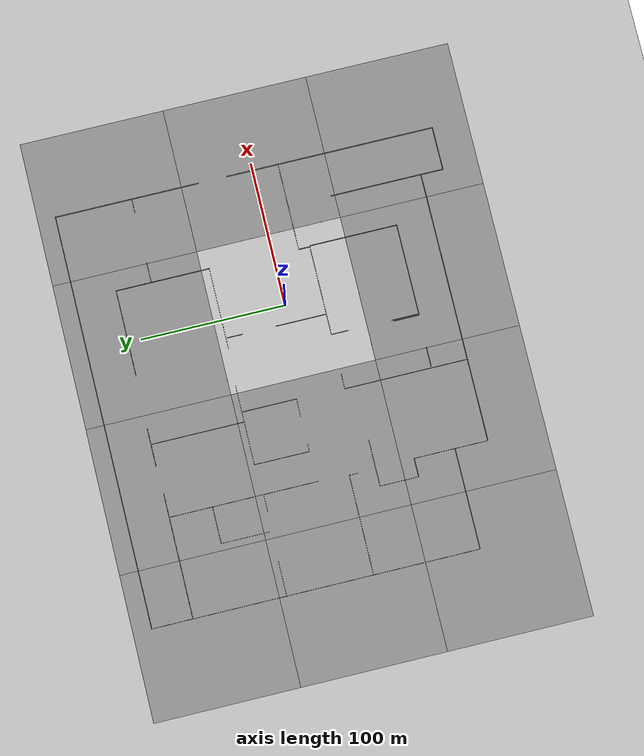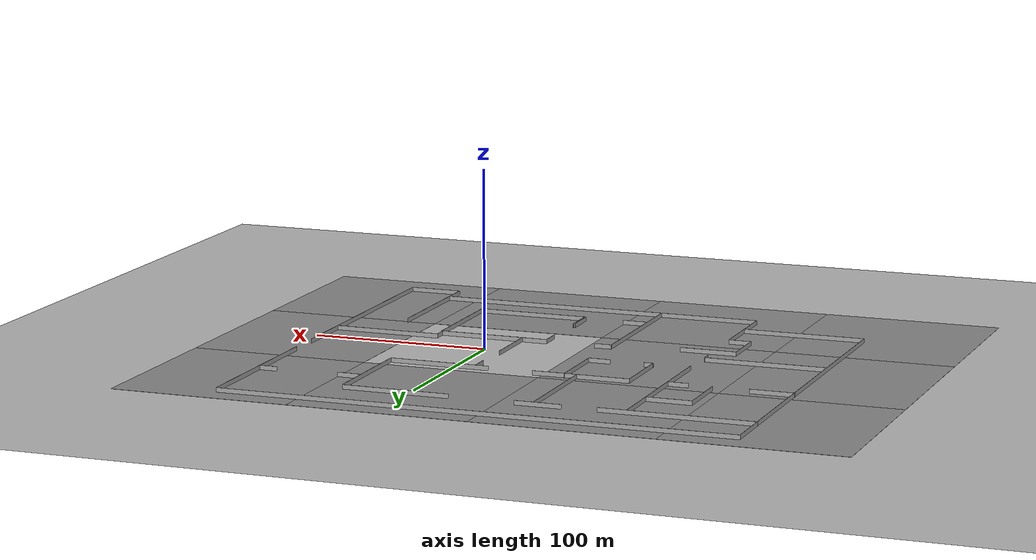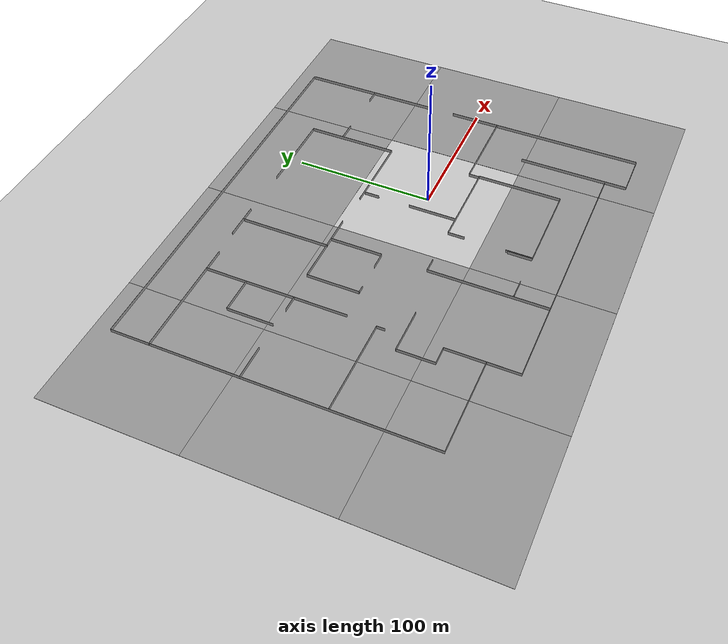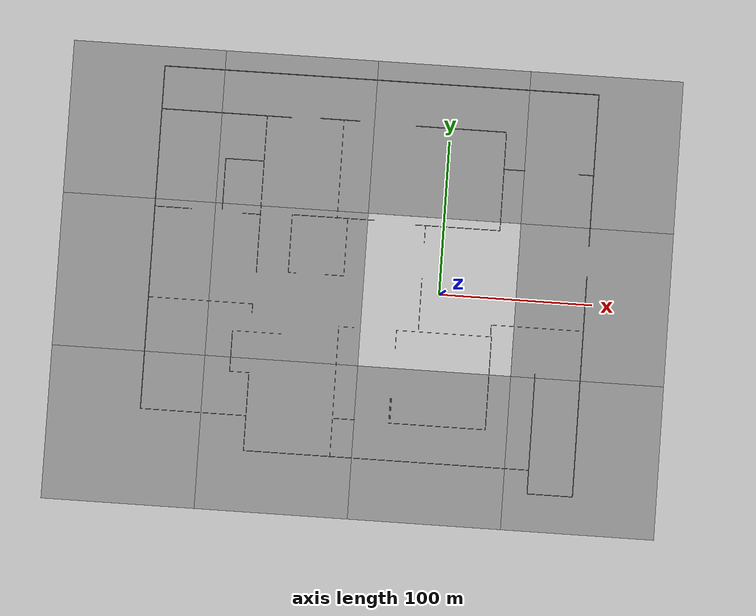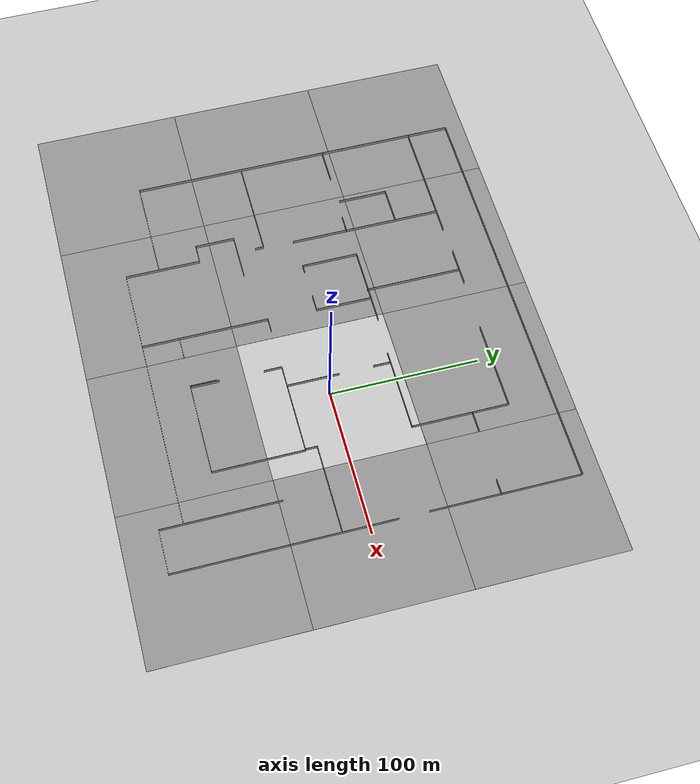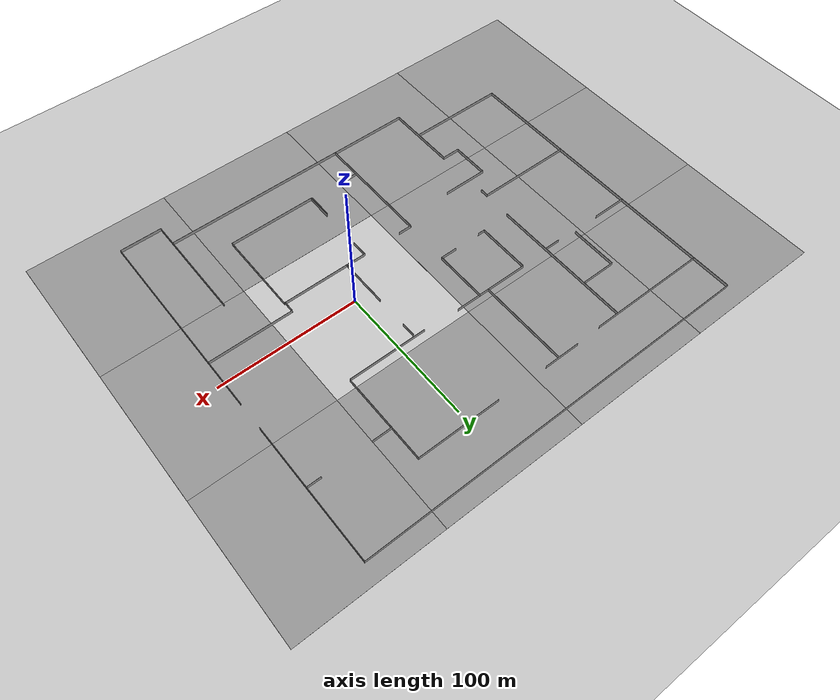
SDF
<sdf version="1.6">
 <world name="default">
  <light name="sun" type="directional">
   <pose>0 0 10 0 -0 0</pose>
   <diffuse>0.8 0.8 0.8 1</diffuse>
   <specular>0.2 0.2 0.2 1</specular>
   <attenuation>
    <range>1000</range>
    <constant>0.9</constant>
    <linear>0.01</linear>
    <quadratic>0.001</quadratic>
   </attenuation>
   <direction>-0.5 0.1 -0.9</direction>
  </light>
  <model name="ground_plane">
   <static>1</static>
   <link name="link">
    <collision name="collision">
     <geometry><plane><normal>0 0 1</normal><size>100 100</size></plane></geometry>
     <surface>
      <contact><collide_bitmask>65535</collide_bitmask></contact>
      <friction><ode><mu>100</mu><mu2>50</mu2></ode></friction>
     </surface>
    </collision>
    <visual name="visual">
     <cast_shadows>0</cast_shadows>
     <geometry><plane><normal>0 0 1</normal><size>100 100</size></plane></geometry>
     <material>
      <script><uri>file://media/materials/scripts/gazebo.material</uri><name>Gazebo/Grey</name></script>
     </material>
    </visual>
   </link>
  </model>
  <gravity>0 0 -9.8</gravity>
  <magnetic_field>6e-06 2.3e-05 -4.2e-05</magnetic_field>
  <atmosphere type="adiabatic"/>
  <physics name="default_physics" default="0" type="ode">
   <max_step_size>0.001</max_step_size>
   <real_time_factor>1</real_time_factor>
   <real_time_update_rate>1000</real_time_update_rate>
  </physics>
  <scene><ambient>0.4 0.4 0.4 1</ambient><background>0.7 0.7 0.7 1</background><shadows>1</shadows></scene>
  <audio><device>default</device></audio>
  <spherical_coordinates>
   <surface_model>EARTH_WGS84</surface_model>
   <latitude_deg>0</latitude_deg>
   <longitude_deg>0</longitude_deg>
   <elevation>0</elevation>
   <heading_deg>0</heading_deg>
  </spherical_coordinates>
  <model name="300x300">
   <pose>-47.1602 6.03765 0 0 -0 0</pose>
   <link name="Wall_0">
    <collision name="Wall_0_Collision">
     <geometry><box><size>85.25 0.15 2.5</size></box></geometry>
     <pose>0 0 1.25 0 -0 0</pose>
    </collision>
    <visual name="Wall_0_Visual">
     <pose>0 0 1.25 0 -0 0</pose>
     <geometry><box><size>85.25 0.15 2.5</size></box></geometry>
     <material>
      <script><uri>file://media/materials/scripts/gazebo.material</uri><name>Gazebo/Grey</name></script>
      <ambient>1 1 1 1</ambient>
     </material>
     <meta><layer>0</layer></meta>
    </visual>
    <pose>-99.6665 102.918 0 0 -0 3.14159</pose>
   </link>
   <link name="Wall_1">
    <collision name="Wall_1_Collision">
     <geometry><box><size>196.5 0.15 2.5</size></box></geometry>
     <pose>0 0 1.25 0 -0 0</pose>
    </collision>
    <visual name="Wall_1_Visual">
     <pose>0 0 1.25 0 -0 0</pose>
     <geometry><box><size>196.5 0.15 2.5</size></box></geometry>
     <material>
      <script><uri>file://media/materials/scripts/gazebo.material</uri><name>Gazebo/Grey</name></script>
      <ambient>1 1 1 1</ambient>
     </material>
     <meta><layer>0</layer></meta>
    </visual>
    <pose>-142.216 4.7426 0 0 -0 -1.5708</pose>
   </link>
   <link name="Wall_10">
    <collision name="Wall_10_Collision">
     <geometry><box><size>10 0.15 2.5</size></box></geometry>
     <pose>0 0 1.25 0 -0 0</pose>
    </collision>
    <visual name="Wall_10_Visual">
     <pose>0 0 1.25 0 -0 0</pose>
     <geometry><box><size>10 0.15 2.5</size></box></geometry>
     <material>
      <script><uri>file://media/materials/scripts/gazebo.material</uri><name>Gazebo/Grey</name></script>
      <ambient>1 1 1 1</ambient>
     </material>
     <meta><layer>0</layer></meta>
    </visual>
    <pose>-12.0457 -31.3094 0 0 -0 0</pose>
   </link>
   <link name="Wall_12">
    <collision name="Wall_12_Collision">
     <geometry><box><size>13.75 0.15 2.5</size></box></geometry>
     <pose>0 0 1.25 0 -0 0</pose>
    </collision>
    <visual name="Wall_12_Visual">
     <pose>0 0 1.25 0 -0 0</pose>
     <geometry><box><size>13.75 0.15 2.5</size></box></geometry>
     <material>
      <script><uri>file://media/materials/scripts/gazebo.material</uri><name>Gazebo/Grey</name></script>
      <ambient>1 1 1 1</ambient>
     </material>
     <meta><layer>0</layer></meta>
    </visual>
    <pose>-9.19897 -91.2484 0 0 -0 0</pose>
   </link>
   <link name="Wall_14">
    <collision name="Wall_14_Collision">
     <geometry><box><size>17.5 0.15 2.5</size></box></geometry>
     <pose>0 0 1.25 0 -0 0</pose>
    </collision>
    <visual name="Wall_14_Visual">
     <pose>0 0 1.25 0 -0 0</pose>
     <geometry><box><size>17.5 0.15 2.5</size></box></geometry>
     <material>
      <script><uri>file://media/materials/scripts/gazebo.material</uri><name>Gazebo/Grey</name></script>
      <ambient>1 1 1 1</ambient>
     </material>
     <meta><layer>0</layer></meta>
    </visual>
    <pose>19.7885 -83.1718 0 0 -0 -1.5708</pose>
   </link>
   <link name="Wall_15">
    <collision name="Wall_15_Collision">
     <geometry><box><size>63.25 0.15 2.5</size></box></geometry>
     <pose>0 0 1.25 0 -0 0</pose>
    </collision>
    <visual name="Wall_15_Visual">
     <pose>0 0 1.25 0 -0 0</pose>
     <geometry><box><size>63.25 0.15 2.5</size></box></geometry>
     <material>
      <script><uri>file://media/materials/scripts/gazebo.material</uri><name>Gazebo/Grey</name></script>
      <ambient>1 1 1 1</ambient>
     </material>
     <meta><layer>0</layer></meta>
    </visual>
    <pose>51.3385 -91.8468 0 0 -0 0</pose>
   </link>
   <link name="Wall_16">
    <collision name="Wall_16_Collision">
     <geometry><box><size>60.75 0.15 2.5</size></box></geometry>
     <pose>0 0 1.25 0 -0 0</pose>
    </collision>
    <visual name="Wall_16_Visual">
     <pose>0 0 1.25 0 -0 0</pose>
     <geometry><box><size>60.75 0.15 2.5</size></box></geometry>
     <material>
      <script><uri>file://media/materials/scripts/gazebo.material</uri><name>Gazebo/Grey</name></script>
      <ambient>1 1 1 1</ambient>
     </material>
     <meta><layer>0</layer></meta>
    </visual>
    <pose>82.8885 -61.5468 0 0 -0 1.5708</pose>
   </link>
   <link name="Wall_17">
    <collision name="Wall_17_Collision">
     <geometry><box><size>62.25 0.15 2.5</size></box></geometry>
     <pose>0 0 1.25 0 -0 0</pose>
    </collision>
    <visual name="Wall_17_Visual">
     <pose>0 0 1.25 0 -0 0</pose>
     <geometry><box><size>62.25 0.15 2.5</size></box></geometry>
     <material>
      <script><uri>file://media/materials/scripts/gazebo.material</uri><name>Gazebo/Grey</name></script>
      <ambient>1 1 1 1</ambient>
     </material>
     <meta><layer>0</layer></meta>
    </visual>
    <pose>51.8385 -31.2468 0 0 -0 3.14159</pose>
   </link>
   <link name="Wall_18">
    <collision name="Wall_18_Collision">
     <geometry><box><size>12 0.15 2.5</size></box></geometry>
     <pose>0 0 1.25 0 -0 0</pose>
    </collision>
    <visual name="Wall_18_Visual">
     <pose>0 0 1.25 0 -0 0</pose>
     <geometry><box><size>12 0.15 2.5</size></box></geometry>
     <material>
      <script><uri>file://media/materials/scripts/gazebo.material</uri><name>Gazebo/Grey</name></script>
      <ambient>1 1 1 1</ambient>
     </material>
     <meta><layer>0</layer></meta>
    </visual>
    <pose>20.7885 -37.1718 0 0 -0 -1.5708</pose>
   </link>
   <link name="Wall_2">
    <collision name="Wall_2_Collision">
     <geometry><box><size>69 0.15 2.5</size></box></geometry>
     <pose>0 0 1.25 0 -0 0</pose>
    </collision>
    <visual name="Wall_2_Visual">
     <pose>0 0 1.25 0 -0 0</pose>
     <geometry><box><size>69 0.15 2.5</size></box></geometry>
     <material>
      <script><uri>file://media/materials/scripts/gazebo.material</uri><name>Gazebo/Grey</name></script>
      <ambient>1 1 1 1</ambient>
     </material>
     <meta><layer>0</layer></meta>
    </visual>
    <pose>-107.791 -93.4324 0 0 -0 0</pose>
   </link>
   <link name="Wall_20">
    <collision name="Wall_20_Collision">
     <geometry><box><size>19 0.15 2.5</size></box></geometry>
     <pose>0 0 1.25 0 -0 0</pose>
    </collision>
    <visual name="Wall_20_Visual">
     <pose>0 0 1.25 0 -0 0</pose>
     <geometry><box><size>19 0.15 2.5</size></box></geometry>
     <material>
      <script><uri>file://media/materials/scripts/gazebo.material</uri><name>Gazebo/Grey</name></script>
      <ambient>1 1 1 1</ambient>
     </material>
     <meta><layer>0</layer></meta>
    </visual>
    <pose>20.5499 -82.399 0 0 -0 -1.5708</pose>
   </link>
   <link name="Wall_23">
    <collision name="Wall_23_Collision">
     <geometry><box><size>7.75 0.15 2.5</size></box></geometry>
     <pose>0 0 1.25 0 -0 0</pose>
    </collision>
    <visual name="Wall_23_Visual">
     <pose>0 0 1.25 0 -0 0</pose>
     <geometry><box><size>7.75 0.15 2.5</size></box></geometry>
     <material>
      <script><uri>file://media/materials/scripts/gazebo.material</uri><name>Gazebo/Grey</name></script>
      <ambient>1 1 1 1</ambient>
     </material>
     <meta><layer>0</layer></meta>
    </visual>
    <pose>82.2262 -27.295 0 0 -0 1.5708</pose>
   </link>
   <link name="Wall_24">
    <collision name="Wall_24_Collision">
     <geometry><box><size>60.25 0.15 2.5</size></box></geometry>
     <pose>0 0 1.25 0 -0 0</pose>
    </collision>
    <visual name="Wall_24_Visual">
     <pose>0 0 1.25 0 -0 0</pose>
     <geometry><box><size>60.25 0.15 2.5</size></box></geometry>
     <material>
      <script><uri>file://media/materials/scripts/gazebo.material</uri><name>Gazebo/Grey</name></script>
      <ambient>1 1 1 1</ambient>
     </material>
     <meta><layer>0</layer></meta>
    </visual>
    <pose>112.276 -23.495 0 0 -0 0</pose>
   </link>
   <link name="Wall_26">
    <collision name="Wall_26_Collision">
     <geometry><box><size>144 0.15 2.5</size></box></geometry>
     <pose>0 0 1.25 0 -0 0</pose>
    </collision>
    <visual name="Wall_26_Visual">
     <pose>0 0 1.25 0 -0 0</pose>
     <geometry><box><size>144 0.15 2.5</size></box></geometry>
     <material>
      <script><uri>file://media/materials/scripts/gazebo.material</uri><name>Gazebo/Grey</name></script>
      <ambient>1 1 1 1</ambient>
     </material>
     <meta><layer>0</layer></meta>
    </visual>
    <pose>142.38 -59.6182 0 0 -0 -1.5708</pose>
   </link>
   <link name="Wall_27">
    <collision name="Wall_27_Collision">
     <geometry><box><size>29.75 0.15 2.5</size></box></geometry>
     <pose>0 0 1.25 0 -0 0</pose>
    </collision>
    <visual name="Wall_27_Visual">
     <pose>0 0 1.25 0 -0 0</pose>
     <geometry><box><size>29.75 0.15 2.5</size></box></geometry>
     <material>
      <script><uri>file://media/materials/scripts/gazebo.material</uri><name>Gazebo/Grey</name></script>
      <ambient>1 1 1 1</ambient>
     </material>
     <meta><layer>0</layer></meta>
    </visual>
    <pose>127.58 -131.543 0 0 -0 3.14159</pose>
   </link>
   <link name="Wall_28">
    <collision name="Wall_28_Collision">
     <geometry><box><size>78.25 0.15 2.5</size></box></geometry>
     <pose>0 0 1.25 0 -0 0</pose>
    </collision>
    <visual name="Wall_28_Visual">
     <pose>0 0 1.25 0 -0 0</pose>
     <geometry><box><size>78.25 0.15 2.5</size></box></geometry>
     <material>
      <script><uri>file://media/materials/scripts/gazebo.material</uri><name>Gazebo/Grey</name></script>
      <ambient>1 1 1 1</ambient>
     </material>
     <meta><layer>0</layer></meta>
    </visual>
    <pose>112.78 -92.4932 0 0 -0 1.5708</pose>
   </link>
   <link name="Wall_30">
    <collision name="Wall_30_Collision">
     <geometry><box><size>46.5 0.15 2.5</size></box></geometry>
     <pose>0 0 1.25 0 -0 0</pose>
    </collision>
    <visual name="Wall_30_Visual">
     <pose>0 0 1.25 0 -0 0</pose>
     <geometry><box><size>46.5 0.15 2.5</size></box></geometry>
     <material>
      <script><uri>file://media/materials/scripts/gazebo.material</uri><name>Gazebo/Grey</name></script>
      <ambient>1 1 1 1</ambient>
     </material>
     <meta><layer>0</layer></meta>
    </visual>
    <pose>142.38 55.2791 0 0 -0 1.5708</pose>
   </link>
   <link name="Wall_31">
    <collision name="Wall_31_Collision">
     <geometry><box><size>10 0.15 2.5</size></box></geometry>
     <pose>0 0 1.25 0 -0 0</pose>
    </collision>
    <visual name="Wall_31_Visual">
     <pose>0 0 1.25 0 -0 0</pose>
     <geometry><box><size>10 0.15 2.5</size></box></geometry>
     <material>
      <script><uri>file://media/materials/scripts/gazebo.material</uri><name>Gazebo/Grey</name></script>
      <ambient>1 1 1 1</ambient>
     </material>
     <meta><layer>0</layer></meta>
    </visual>
    <pose>137.455 78.4541 0 0 -0 3.14159</pose>
   </link>
   <link name="Wall_33">
    <collision name="Wall_33_Collision">
     <geometry><box><size>13.75 0.15 2.5</size></box></geometry>
     <pose>0 0 1.25 0 -0 0</pose>
    </collision>
    <visual name="Wall_33_Visual">
     <pose>0 0 1.25 0 -0 0</pose>
     <geometry><box><size>13.75 0.15 2.5</size></box></geometry>
     <material>
      <script><uri>file://media/materials/scripts/gazebo.material</uri><name>Gazebo/Grey</name></script>
      <ambient>1 1 1 1</ambient>
     </material>
     <meta><layer>0</layer></meta>
    </visual>
    <pose>90.6549 78.5517 0 0 -0 3.14159</pose>
   </link>
   <link name="Wall_35">
    <collision name="Wall_35_Collision">
     <geometry><box><size>59.5 0.15 2.5</size></box></geometry>
     <pose>0 0 1.25 0 -0 0</pose>
    </collision>
    <visual name="Wall_35_Visual">
     <pose>0 0 1.25 0 -0 0</pose>
     <geometry><box><size>59.5 0.15 2.5</size></box></geometry>
     <material>
      <script><uri>file://media/materials/scripts/gazebo.material</uri><name>Gazebo/Grey</name></script>
      <ambient>1 1 1 1</ambient>
     </material>
     <meta><layer>0</layer></meta>
    </visual>
    <pose>54.0321 102.918 0 0 -0 0</pose>
   </link>
   <link name="Wall_36">
    <collision name="Wall_36_Collision">
     <geometry><box><size>64.75 0.15 2.5</size></box></geometry>
     <pose>0 0 1.25 0 -0 0</pose>
    </collision>
    <visual name="Wall_36_Visual">
     <pose>0 0 1.25 0 -0 0</pose>
     <geometry><box><size>64.75 0.15 2.5</size></box></geometry>
     <material>
      <script><uri>file://media/materials/scripts/gazebo.material</uri><name>Gazebo/Grey</name></script>
      <ambient>1 1 1 1</ambient>
     </material>
     <meta><layer>0</layer></meta>
    </visual>
    <pose>83.7071 70.6176 0 0 -0 -1.5708</pose>
   </link>
   <link name="Wall_37">
    <collision name="Wall_37_Collision">
     <geometry><box><size>56.25 0.15 2.5</size></box></geometry>
     <pose>0 0 1.25 0 -0 0</pose>
    </collision>
    <visual name="Wall_37_Visual">
     <pose>0 0 1.25 0 -0 0</pose>
     <geometry><box><size>56.25 0.15 2.5</size></box></geometry>
     <material>
      <script><uri>file://media/materials/scripts/gazebo.material</uri><name>Gazebo/Grey</name></script>
      <ambient>1 1 1 1</ambient>
     </material>
     <meta><layer>0</layer></meta>
    </visual>
    <pose>55.6571 38.3176 0 0 -0 3.14159</pose>
   </link>
   <link name="Wall_39">
    <collision name="Wall_39_Collision">
     <geometry><box><size>35 0.15 2.5</size></box></geometry>
     <pose>0 0 1.25 0 -0 0</pose>
    </collision>
    <visual name="Wall_39_Visual">
     <pose>0 0 1.25 0 -0 0</pose>
     <geometry><box><size>35 0.15 2.5</size></box></geometry>
     <material>
      <script><uri>file://media/materials/scripts/gazebo.material</uri><name>Gazebo/Grey</name></script>
      <ambient>1 1 1 1</ambient>
     </material>
     <meta><layer>0</layer></meta>
    </visual>
    <pose>35.0172 -13.67 0 0 -0 1.5708</pose>
   </link>
   <link name="Wall_4">
    <collision name="Wall_4_Collision">
     <geometry><box><size>32 0.15 2.5</size></box></geometry>
     <pose>0 0 1.25 0 -0 0</pose>
    </collision>
    <visual name="Wall_4_Visual">
     <pose>0 0 1.25 0 -0 0</pose>
     <geometry><box><size>32 0.15 2.5</size></box></geometry>
     <material>
      <script><uri>file://media/materials/scripts/gazebo.material</uri><name>Gazebo/Grey</name></script>
      <ambient>1 1 1 1</ambient>
     </material>
     <meta><layer>0</layer></meta>
    </visual>
    <pose>-69.9957 -38.7094 0 0 -0 3.14159</pose>
   </link>
   <link name="Wall_44">
    <collision name="Wall_44_Collision">
     <geometry><box><size>10.75 0.15 2.5</size></box></geometry>
     <pose>0 0 1.25 0 -0 0</pose>
    </collision>
    <visual name="Wall_44_Visual">
     <pose>0 0 1.25 0 -0 0</pose>
     <geometry><box><size>10.75 0.15 2.5</size></box></geometry>
     <material>
      <script><uri>file://media/materials/scripts/gazebo.material</uri><name>Gazebo/Grey</name></script>
      <ambient>1 1 1 1</ambient>
     </material>
     <meta><layer>0</layer></meta>
    </visual>
    <pose>35.0172 32.1342 0 0 -0 -1.5708</pose>
   </link>
   <link name="Wall_46">
    <collision name="Wall_46_Collision">
     <geometry><box><size>26 0.15 2.5</size></box></geometry>
     <pose>0 0 1.25 0 -0 0</pose>
    </collision>
    <visual name="Wall_46_Visual">
     <pose>0 0 1.25 0 -0 0</pose>
     <geometry><box><size>26 0.15 2.5</size></box></geometry>
     <material>
      <script><uri>file://media/materials/scripts/gazebo.material</uri><name>Gazebo/Grey</name></script>
      <ambient>1 1 1 1</ambient>
     </material>
     <meta><layer>0</layer></meta>
    </visual>
    <pose>-25.1556 103.679 0 0 -0 0</pose>
   </link>
   <link name="Wall_48">
    <collision name="Wall_48_Collision">
     <geometry><box><size>64 0.15 2.5</size></box></geometry>
     <pose>0 0 1.25 0 -0 0</pose>
    </collision>
    <visual name="Wall_48_Visual">
     <pose>0 0 1.25 0 -0 0</pose>
     <geometry><box><size>64 0.15 2.5</size></box></geometry>
     <material>
      <script><uri>file://media/materials/scripts/gazebo.material</uri><name>Gazebo/Grey</name></script>
      <ambient>1 1 1 1</ambient>
     </material>
     <meta><layer>0</layer></meta>
    </visual>
    <pose>-22.8519 70.9926 0 0 -0 -1.5708</pose>
   </link>
   <link name="Wall_5">
    <collision name="Wall_5_Collision">
     <geometry><box><size>26.75 0.15 2.5</size></box></geometry>
     <pose>0 0 1.25 0 -0 0</pose>
    </collision>
    <visual name="Wall_5_Visual">
     <pose>0 0 1.25 0 -0 0</pose>
     <geometry><box><size>26.75 0.15 2.5</size></box></geometry>
     <material>
      <script><uri>file://media/materials/scripts/gazebo.material</uri><name>Gazebo/Grey</name></script>
      <ambient>1 1 1 1</ambient>
     </material>
     <meta><layer>0</layer></meta>
    </visual>
    <pose>-85.9207 -52.0094 0 0 -0 -1.5708</pose>
   </link>
   <link name="Wall_50">
    <collision name="Wall_50_Collision">
     <geometry><box><size>5.25 0.15 2.5</size></box></geometry>
     <pose>0 0 1.25 0 -0 0</pose>
    </collision>
    <visual name="Wall_50_Visual">
     <pose>0 0 1.25 0 -0 0</pose>
     <geometry><box><size>5.25 0.15 2.5</size></box></geometry>
     <material>
      <script><uri>file://media/materials/scripts/gazebo.material</uri><name>Gazebo/Grey</name></script>
      <ambient>1 1 1 1</ambient>
     </material>
     <meta><layer>0</layer></meta>
    </visual>
    <pose>-49.7678 1.6467 0 0 -0 3.14159</pose>
   </link>
   <link name="Wall_51">
    <collision name="Wall_51_Collision">
     <geometry><box><size>38 0.15 2.5</size></box></geometry>
     <pose>0 0 1.25 0 -0 0</pose>
    </collision>
    <visual name="Wall_51_Visual">
     <pose>0 0 1.25 0 -0 0</pose>
     <geometry><box><size>38 0.15 2.5</size></box></geometry>
     <material>
      <script><uri>file://media/materials/scripts/gazebo.material</uri><name>Gazebo/Grey</name></script>
      <ambient>1 1 1 1</ambient>
     </material>
     <meta><layer>0</layer></meta>
    </visual>
    <pose>-52.3178 20.5717 0 0 -0 1.5708</pose>
   </link>
   <link name="Wall_52">
    <collision name="Wall_52_Collision">
     <geometry><box><size>54.5 0.15 2.5</size></box></geometry>
     <pose>0 0 1.25 0 -0 0</pose>
    </collision>
    <visual name="Wall_52_Visual">
     <pose>0 0 1.25 0 -0 0</pose>
     <geometry><box><size>54.5 0.15 2.5</size></box></geometry>
     <material>
      <script><uri>file://media/materials/scripts/gazebo.material</uri><name>Gazebo/Grey</name></script>
      <ambient>1 1 1 1</ambient>
     </material>
     <meta><layer>0</layer></meta>
    </visual>
    <pose>-25.1428 39.4967 0 0 -0 0</pose>
   </link>
   <link name="Wall_54">
    <collision name="Wall_54_Collision">
     <geometry><box><size>38 0.15 2.5</size></box></geometry>
     <pose>0 0 1.25 0 -0 0</pose>
    </collision>
    <visual name="Wall_54_Visual">
     <pose>0 0 1.25 0 -0 0</pose>
     <geometry><box><size>38 0.15 2.5</size></box></geometry>
     <material>
      <script><uri>file://media/materials/scripts/gazebo.material</uri><name>Gazebo/Grey</name></script>
      <ambient>1 1 1 1</ambient>
     </material>
     <meta><layer>0</layer></meta>
    </visual>
    <pose>-15.999 20.7935 0 0 -0 -1.5708</pose>
   </link>
   <link name="Wall_55">
    <collision name="Wall_55_Collision">
     <geometry><box><size>12.25 0.15 2.5</size></box></geometry>
     <pose>0 0 1.25 0 -0 0</pose>
    </collision>
    <visual name="Wall_55_Visual">
     <pose>0 0 1.25 0 -0 0</pose>
     <geometry><box><size>12.25 0.15 2.5</size></box></geometry>
     <material>
      <script><uri>file://media/materials/scripts/gazebo.material</uri><name>Gazebo/Grey</name></script>
      <ambient>1 1 1 1</ambient>
     </material>
     <meta><layer>0</layer></meta>
    </visual>
    <pose>-22.049 1.86847 0 0 -0 3.14159</pose>
   </link>
   <link name="Wall_58">
    <collision name="Wall_58_Collision">
     <geometry><box><size>102.75 0.15 2.5</size></box></geometry>
     <pose>0 0 1.25 0 -0 0</pose>
    </collision>
    <visual name="Wall_58_Visual">
     <pose>0 0 1.25 0 -0 0</pose>
     <geometry><box><size>102.75 0.15 2.5</size></box></geometry>
     <material>
      <script><uri>file://media/materials/scripts/gazebo.material</uri><name>Gazebo/Grey</name></script>
      <ambient>1 1 1 1</ambient>
     </material>
     <meta><layer>0</layer></meta>
    </visual>
    <pose>-73.1066 51.6176 0 0 -0 -1.5708</pose>
   </link>
   <link name="Wall_6">
    <collision name="Wall_6_Collision">
     <geometry><box><size>12.75 0.15 2.5</size></box></geometry>
     <pose>0 0 1.25 0 -0 0</pose>
    </collision>
    <visual name="Wall_6_Visual">
     <pose>0 0 1.25 0 -0 0</pose>
     <geometry><box><size>12.75 0.15 2.5</size></box></geometry>
     <material>
      <script><uri>file://media/materials/scripts/gazebo.material</uri><name>Gazebo/Grey</name></script>
      <ambient>1 1 1 1</ambient>
     </material>
     <meta><layer>0</layer></meta>
    </visual>
    <pose>-79.6207 -65.3094 0 0 -0 0</pose>
   </link>
   <link name="Wall_61">
    <collision name="Wall_61_Collision">
     <geometry><box><size>25.25 0.15 2.5</size></box></geometry>
     <pose>0 0 1.25 0 -0 0</pose>
    </collision>
    <visual name="Wall_61_Visual">
     <pose>0 0 1.25 0 -0 0</pose>
     <geometry><box><size>25.25 0.15 2.5</size></box></geometry>
     <material>
      <script><uri>file://media/materials/scripts/gazebo.material</uri><name>Gazebo/Grey</name></script>
      <ambient>1 1 1 1</ambient>
     </material>
     <meta><layer>0</layer></meta>
    </visual>
    <pose>-85.6566 73.2216 0 0 -0 3.14159</pose>
   </link>
   <link name="Wall_62">
    <collision name="Wall_62_Collision">
     <geometry><box><size>33.5 0.15 2.5</size></box></geometry>
     <pose>0 0 1.25 0 -0 0</pose>
    </collision>
    <visual name="Wall_62_Visual">
     <pose>0 0 1.25 0 -0 0</pose>
     <geometry><box><size>33.5 0.15 2.5</size></box></geometry>
     <material>
      <script><uri>file://media/materials/scripts/gazebo.material</uri><name>Gazebo/Grey</name></script>
      <ambient>1 1 1 1</ambient>
     </material>
     <meta><layer>0</layer></meta>
    </visual>
    <pose>-98.2066 56.5466 0 0 -0 -1.5708</pose>
   </link>
   <link name="Wall_64">
    <collision name="Wall_64_Collision">
     <geometry><box><size>24.5 0.15 2.5</size></box></geometry>
     <pose>0 0 1.25 0 -0 0</pose>
    </collision>
    <visual name="Wall_64_Visual">
     <pose>0 0 1.25 0 -0 0</pose>
     <geometry><box><size>24.5 0.15 2.5</size></box></geometry>
     <material>
      <script><uri>file://media/materials/scripts/gazebo.material</uri><name>Gazebo/Grey</name></script>
      <ambient>1 1 1 1</ambient>
     </material>
     <meta><layer>0</layer></meta>
    </visual>
    <pose>-130.222 38.957 0 0 -0 0</pose>
   </link>
   <link name="Wall_66">
    <collision name="Wall_66_Collision">
     <geometry><box><size>11.5 0.15 2.5</size></box></geometry>
     <pose>0 0 1.25 0 -0 0</pose>
    </collision>
    <visual name="Wall_66_Visual">
     <pose>0 0 1.25 0 -0 0</pose>
     <geometry><box><size>11.5 0.15 2.5</size></box></geometry>
     <material>
      <script><uri>file://media/materials/scripts/gazebo.material</uri><name>Gazebo/Grey</name></script>
      <ambient>1 1 1 1</ambient>
     </material>
     <meta><layer>0</layer></meta>
    </visual>
    <pose>-78.7816 38.1956 0 0 -0 3.14159</pose>
   </link>
   <link name="Wall_68">
    <collision name="Wall_68_Collision">
     <geometry><box><size>67.75 0.15 2.5</size></box></geometry>
     <pose>0 0 1.25 0 -0 0</pose>
    </collision>
    <visual name="Wall_68_Visual">
     <pose>0 0 1.25 0 -0 0</pose>
     <geometry><box><size>67.75 0.15 2.5</size></box></geometry>
     <material>
      <script><uri>file://media/materials/scripts/gazebo.material</uri><name>Gazebo/Grey</name></script>
      <ambient>1 1 1 1</ambient>
     </material>
     <meta><layer>0</layer></meta>
    </visual>
    <pose>-107.836 -20.4349 0 0 -0 0</pose>
   </link>
   <link name="Wall_69">
    <collision name="Wall_69_Collision">
     <geometry><box><size>6 0.15 2.5</size></box></geometry>
     <pose>0 0 1.25 0 -0 0</pose>
    </collision>
    <visual name="Wall_69_Visual">
     <pose>0 0 1.25 0 -0 0</pose>
     <geometry><box><size>6 0.15 2.5</size></box></geometry>
     <material>
      <script><uri>file://media/materials/scripts/gazebo.material</uri><name>Gazebo/Grey</name></script>
      <ambient>1 1 1 1</ambient>
     </material>
     <meta><layer>0</layer></meta>
    </visual>
    <pose>-74.0358 -23.3599 0 0 -0 -1.5708</pose>
   </link>
   <link name="Wall_7">
    <collision name="Wall_7_Collision">
     <geometry><box><size>51 0.15 2.5</size></box></geometry>
     <pose>0 0 1.25 0 -0 0</pose>
    </collision>
    <visual name="Wall_7_Visual">
     <pose>0 0 1.25 0 -0 0</pose>
     <geometry><box><size>51 0.15 2.5</size></box></geometry>
     <material>
      <script><uri>file://media/materials/scripts/gazebo.material</uri><name>Gazebo/Grey</name></script>
      <ambient>1 1 1 1</ambient>
     </material>
     <meta><layer>0</layer></meta>
    </visual>
    <pose>-73.3207 -90.7344 0 0 -0 -1.5708</pose>
   </link>
   <link name="Wall_73">
    <collision name="Wall_73_Collision">
     <geometry><box><size>129.75 0.15 2.5</size></box></geometry>
     <pose>0 0 1.25 0 -0 0</pose>
    </collision>
    <visual name="Wall_73_Visual">
     <pose>0 0 1.25 0 -0 0</pose>
     <geometry><box><size>129.75 0.15 2.5</size></box></geometry>
     <material>
      <script><uri>file://media/materials/scripts/gazebo.material</uri><name>Gazebo/Grey</name></script>
      <ambient>1 1 1 1</ambient>
     </material>
     <meta><layer>0</layer></meta>
    </visual>
    <pose>47.8293 -116.159 0 0 -0 0</pose>
   </link>
   <link name="Wall_77">
    <collision name="Wall_77_Collision">
     <geometry><box><size>28.25 0.15 2.5</size></box></geometry>
     <pose>0 0 1.25 0 -0 0</pose>
    </collision>
    <visual name="Wall_77_Visual">
     <pose>0 0 1.25 0 -0 0</pose>
     <geometry><box><size>28.25 0.15 2.5</size></box></geometry>
     <material>
      <script><uri>file://media/materials/scripts/gazebo.material</uri><name>Gazebo/Grey</name></script>
      <ambient>1 1 1 1</ambient>
     </material>
     <meta><layer>0</layer></meta>
    </visual>
    <pose>-142.212 116.978 0 0 -0 1.5708</pose>
   </link>
   <link name="Wall_78">
    <collision name="Wall_78_Collision">
     <geometry><box><size>284.727 0.15 2.5</size></box></geometry>
     <pose>0 0 1.25 0 -0 0</pose>
    </collision>
    <visual name="Wall_78_Visual">
     <pose>0 0 1.25 0 -0 0</pose>
     <geometry><box><size>284.727 0.15 2.5</size></box></geometry>
     <material>
      <script><uri>file://media/materials/scripts/gazebo.material</uri><name>Gazebo/Grey</name></script>
      <ambient>1 1 1 1</ambient>
     </material>
     <meta><layer>0</layer></meta>
    </visual>
    <pose>0.093822 131.286 0 0 -0 0.001809</pose>
   </link>
   <link name="Wall_79">
    <collision name="Wall_79_Collision">
     <geometry><box><size>53.25 0.15 2.5</size></box></geometry>
     <pose>0 0 1.25 0 -0 0</pose>
    </collision>
    <visual name="Wall_79_Visual">
     <pose>0 0 1.25 0 -0 0</pose>
     <geometry><box><size>53.25 0.15 2.5</size></box></geometry>
     <material>
      <script><uri>file://media/materials/scripts/gazebo.material</uri><name>Gazebo/Grey</name></script>
      <ambient>1 1 1 1</ambient>
     </material>
     <meta><layer>0</layer></meta>
    </visual>
    <pose>142.397 104.993 0 0 -0 -1.5708</pose>
   </link>
   <link name="Wall_8">
    <collision name="Wall_8_Collision">
     <geometry><box><size>56.5 0.15 2.5</size></box></geometry>
     <pose>0 0 1.25 0 -0 0</pose>
    </collision>
    <visual name="Wall_8_Visual">
     <pose>0 0 1.25 0 -0 0</pose>
     <geometry><box><size>56.5 0.15 2.5</size></box></geometry>
     <material>
      <script><uri>file://media/materials/scripts/gazebo.material</uri><name>Gazebo/Grey</name></script>
      <ambient>1 1 1 1</ambient>
     </material>
     <meta><layer>0</layer></meta>
    </visual>
    <pose>-45.1457 -116.159 0 0 -0 0</pose>
   </link>
   <link name="Wall_9">
    <collision name="Wall_9_Collision">
     <geometry><box><size>85 0.15 2.5</size></box></geometry>
     <pose>0 0 1.25 0 -0 0</pose>
    </collision>
    <visual name="Wall_9_Visual">
     <pose>0 0 1.25 0 -0 0</pose>
     <geometry><box><size>85 0.15 2.5</size></box></geometry>
     <material>
      <script><uri>file://media/materials/scripts/gazebo.material</uri><name>Gazebo/Grey</name></script>
      <ambient>1 1 1 1</ambient>
     </material>
     <meta><layer>0</layer></meta>
    </visual>
    <pose>-16.9707 -73.7344 0 0 -0 1.5708</pose>
   </link>
   <static>1</static>
  </model>
  <model name="ground_plane_0">
   <static>1</static>
   <link name="link">
    <collision name="collision">
     <geometry><plane><normal>0 0 1</normal><size>100 100</size></plane></geometry>
     <surface>
      <contact><collide_bitmask>65535</collide_bitmask></contact>
      <friction><ode><mu>100</mu><mu2>50</mu2></ode></friction>
     </surface>
    </collision>
    <visual name="visual">
     <cast_shadows>0</cast_shadows>
     <geometry><plane><normal>0 0 1</normal><size>100 100</size></plane></geometry>
     <material>
      <script><uri>file://media/materials/scripts/gazebo.material</uri><name>Gazebo/Grey</name></script>
     </material>
    </visual>
   </link>
   <pose>-100 0 0 0 -0 0</pose>
  </model>
  <model name="ground_plane_1">
   <static>1</static>
   <link name="link">
    <collision name="collision">
     <geometry><plane><normal>0 0 1</normal><size>100 100</size></plane></geometry>
     <surface>
      <contact><collide_bitmask>65535</collide_bitmask></contact>
      <friction><ode><mu>100</mu><mu2>50</mu2></ode></friction>
     </surface>
    </collision>
    <visual name="visual">
     <cast_shadows>0</cast_shadows>
     <geometry><plane><normal>0 0 1</normal><size>100 100</size></plane></geometry>
     <material>
      <script><uri>file://media/materials/scripts/gazebo.material</uri><name>Gazebo/Grey</name></script>
     </material>
    </visual>
   </link>
   <pose>-200 0 0 0 -0 0</pose>
  </model>
  <model name="ground_plane_2">
   <static>1</static>
   <link name="link">
    <collision name="collision">
     <geometry><plane><normal>0 0 1</normal><size>100 100</size></plane></geometry>
     <surface>
      <contact><collide_bitmask>65535</collide_bitmask></contact>
      <friction><ode><mu>100</mu><mu2>50</mu2></ode></friction>
     </surface>
    </collision>
    <visual name="visual">
     <cast_shadows>0</cast_shadows>
     <geometry><plane><normal>0 0 1</normal><size>100 100</size></plane></geometry>
     <material>
      <script><uri>file://media/materials/scripts/gazebo.material</uri><name>Gazebo/Grey</name></script>
     </material>
    </visual>
   </link>
   <pose>0 -100 0 0 -0 0</pose>
  </model>
  <model name="ground_plane_3">
   <static>1</static>
   <link name="link">
    <collision name="collision">
     <geometry><plane><normal>0 0 1</normal><size>100 100</size></plane></geometry>
     <surface>
      <contact><collide_bitmask>65535</collide_bitmask></contact>
      <friction><ode><mu>100</mu><mu2>50</mu2></ode></friction>
     </surface>
    </collision>
    <visual name="visual">
     <cast_shadows>0</cast_shadows>
     <geometry><plane><normal>0 0 1</normal><size>100 100</size></plane></geometry>
     <material>
      <script><uri>file://media/materials/scripts/gazebo.material</uri><name>Gazebo/Grey</name></script>
     </material>
    </visual>
   </link>
   <pose>-100 -100 0 0 -0 0</pose>
  </model>
  <model name="ground_plane_4">
   <static>1</static>
   <link name="link">
    <collision name="collision">
     <geometry><plane><normal>0 0 1</normal><size>100 100</size></plane></geometry>
     <surface>
      <contact><collide_bitmask>65535</collide_bitmask></contact>
      <friction><ode><mu>100</mu><mu2>50</mu2></ode></friction>
     </surface>
    </collision>
    <visual name="visual">
     <cast_shadows>0</cast_shadows>
     <geometry><plane><normal>0 0 1</normal><size>100 100</size></plane></geometry>
     <material>
      <script><uri>file://media/materials/scripts/gazebo.material</uri><name>Gazebo/Grey</name></script>
     </material>
    </visual>
   </link>
   <pose>-200 -100 0 0 -0 0</pose>
  </model>
  <model name="ground_plane_5">
   <static>1</static>
   <link name="link">
    <collision name="collision">
     <geometry><plane><normal>0 0 1</normal><size>100 100</size></plane></geometry>
     <surface>
      <contact><collide_bitmask>65535</collide_bitmask></contact>
      <friction><ode><mu>100</mu><mu2>50</mu2></ode></friction>
     </surface>
    </collision>
    <visual name="visual">
     <cast_shadows>0</cast_shadows>
     <geometry><plane><normal>0 0 1</normal><size>100 100</size></plane></geometry>
     <material>
      <script><uri>file://media/materials/scripts/gazebo.material</uri><name>Gazebo/Grey</name></script>
     </material>
    </visual>
   </link>
   <pose>0 100 0 0 -0 0</pose>
  </model>
  <model name="ground_plane_6">
   <static>1</static>
   <link name="link">
    <collision name="collision">
     <geometry><plane><normal>0 0 1</normal><size>100 100</size></plane></geometry>
     <surface>
      <contact><collide_bitmask>65535</collide_bitmask></contact>
      <friction><ode><mu>100</mu><mu2>50</mu2></ode></friction>
     </surface>
    </collision>
    <visual name="visual">
     <cast_shadows>0</cast_shadows>
     <geometry><plane><normal>0 0 1</normal><size>100 100</size></plane></geometry>
     <material>
      <script><uri>file://media/materials/scripts/gazebo.material</uri><name>Gazebo/Grey</name></script>
     </material>
    </visual>
   </link>
   <pose>-100 100 0 0 -0 0</pose>
  </model>
  <model name="ground_plane_7">
   <static>1</static>
   <link name="link">
    <collision name="collision">
     <geometry><plane><normal>0 0 1</normal><size>100 100</size></plane></geometry>
     <surface>
      <contact><collide_bitmask>65535</collide_bitmask></contact>
      <friction><ode><mu>100</mu><mu2>50</mu2></ode></friction>
     </surface>
    </collision>
    <visual name="visual">
     <cast_shadows>0</cast_shadows>
     <geometry><plane><normal>0 0 1</normal><size>100 100</size></plane></geometry>
     <material>
      <script><uri>file://media/materials/scripts/gazebo.material</uri><name>Gazebo/Grey</name></script>
     </material>
    </visual>
   </link>
   <pose>-200 100 0 0 -0 0</pose>
  </model>
  <model name="ground_plane_8">
   <static>1</static>
   <link name="link">
    <collision name="collision">
     <geometry><plane><normal>0 0 1</normal><size>100 100</size></plane></geometry>
     <surface>
      <contact><collide_bitmask>65535</collide_bitmask></contact>
      <friction><ode><mu>100</mu><mu2>50</mu2></ode></friction>
     </surface>
    </collision>
    <visual name="visual">
     <cast_shadows>0</cast_shadows>
     <geometry><plane><normal>0 0 1</normal><size>100 100</size></plane></geometry>
     <material>
      <script><uri>file://media/materials/scripts/gazebo.material</uri><name>Gazebo/Grey</name></script>
     </material>
    </visual>
   </link>
   <pose>100 100 0 0 -0 0</pose>
  </model>
  <model name="ground_plane_9">
   <static>1</static>
   <link name="link">
    <collision name="collision">
     <geometry><plane><normal>0 0 1</normal><size>100 100</size></plane></geometry>
     <surface>
      <contact><collide_bitmask>65535</collide_bitmask></contact>
      <friction><ode><mu>100</mu><mu2>50</mu2></ode></friction>
     </surface>
    </collision>
    <visual name="visual">
     <cast_shadows>0</cast_shadows>
     <geometry><plane><normal>0 0 1</normal><size>100 100</size></plane></geometry>
     <material>
      <script><uri>file://media/materials/scripts/gazebo.material</uri><name>Gazebo/Grey</name></script>
     </material>
    </visual>
   </link>
   <pose>100 0 0 0 -0 0</pose>
  </model>
  <model name="ground_plane_10">
   <static>1</static>
   <link name="link">
    <collision name="collision">
     <geometry><plane><normal>0 0 1</normal><size>100 100</size></plane></geometry>
     <surface>
      <contact><collide_bitmask>65535</collide_bitmask></contact>
      <friction><ode><mu>100</mu><mu2>50</mu2></ode></friction>
     </surface>
    </collision>
    <visual name="visual">
     <cast_shadows>0</cast_shadows>
     <geometry><plane><normal>0 0 1</normal><size>100 100</size></plane></geometry>
     <material>
      <script><uri>file://media/materials/scripts/gazebo.material</uri><name>Gazebo/Grey</name></script>
     </material>
    </visual>
   </link>
   <pose>100 -100 0 0 -0 0</pose>
  </model>
  <plugin name="bot_factory" filename="./build/libbot_factory.so"/>
 </world>
</sdf>
